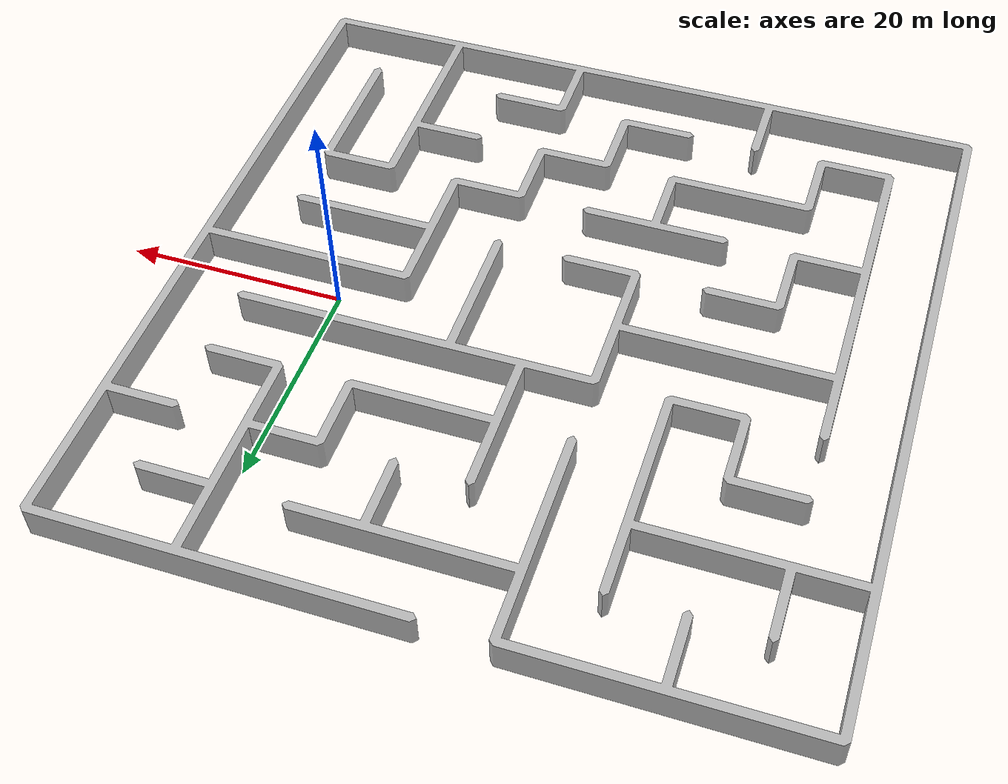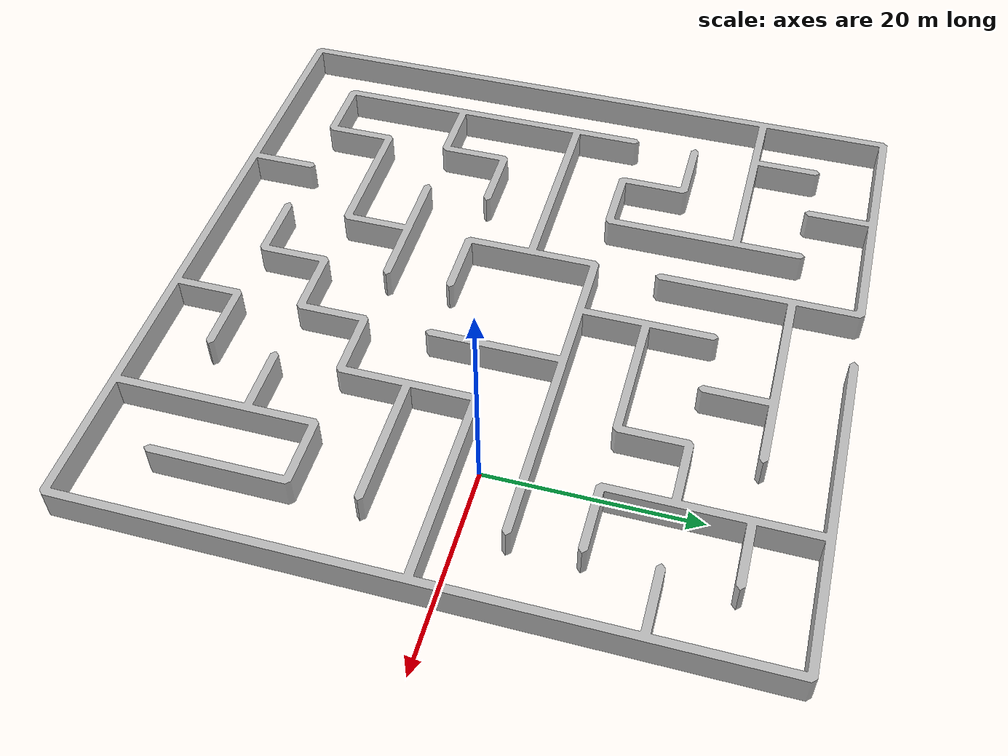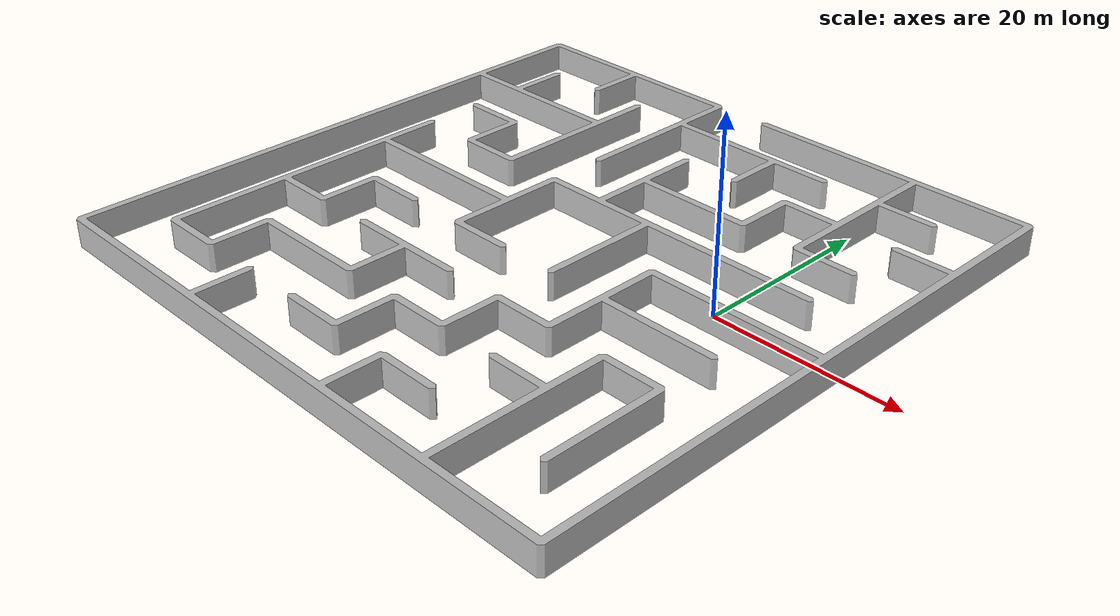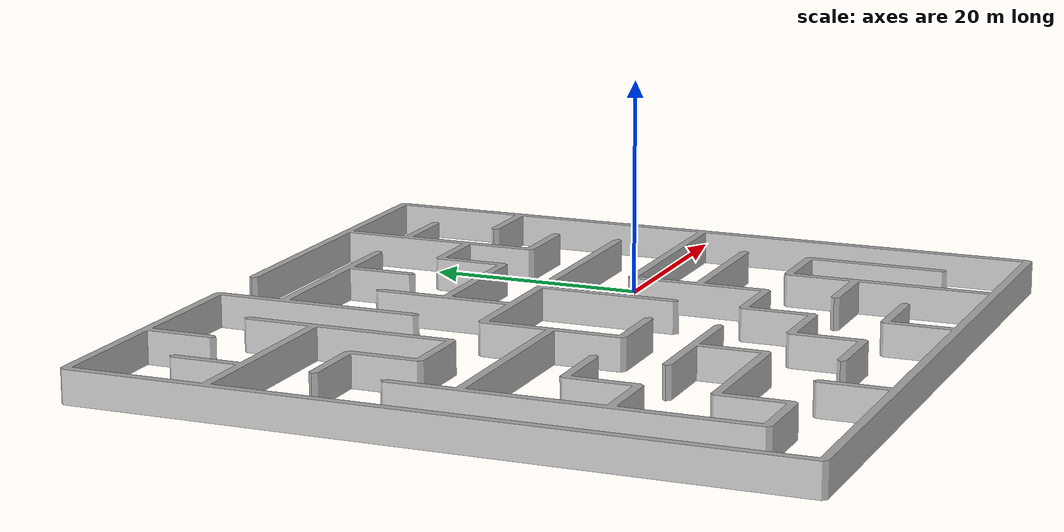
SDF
<?xml version="1.0" ?>
<sdf version="1.4">
  <model name="maze1">
    <link name="link">
      <inertial>
        <mass>1000</mass>
        <inertia>
          <ixx>1000.0</ixx>
          <ixy>0.0</ixy>
          <ixz>0.0</ixz>
          <iyy>1000.0</iyy>
          <iyz>0.0</iyz>
          <izz>1000.0</izz>
        </inertia>
      </inertial>
      <collision name="collision">
        <pose>-51 30 0 0 0 0</pose>
        <geometry>
          <mesh>
            <uri>model://maze1/map.stl</uri>
          </mesh>
        </geometry>
      </collision>
      <visual name="visual">
        <pose>-51 30 0 0 0 0</pose>
        <geometry>
          <mesh>
            <uri>model://maze1/map.stl</uri>
          </mesh>
        </geometry>
      </visual>
    </link>
    <static>1</static>
  </model>
</sdf>
